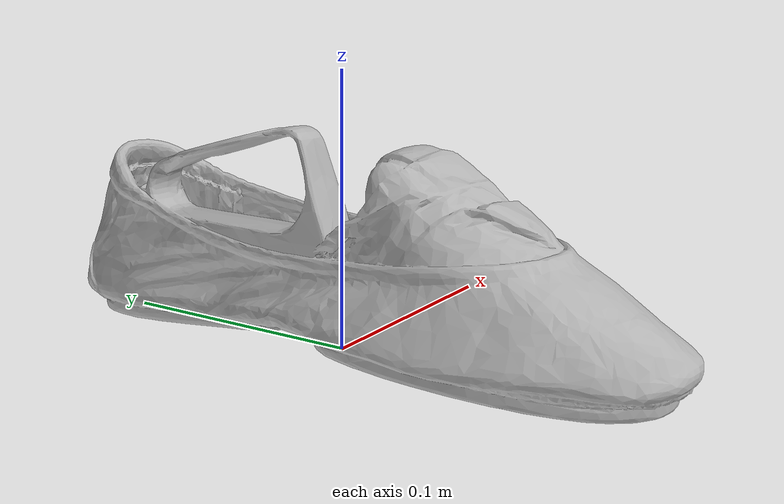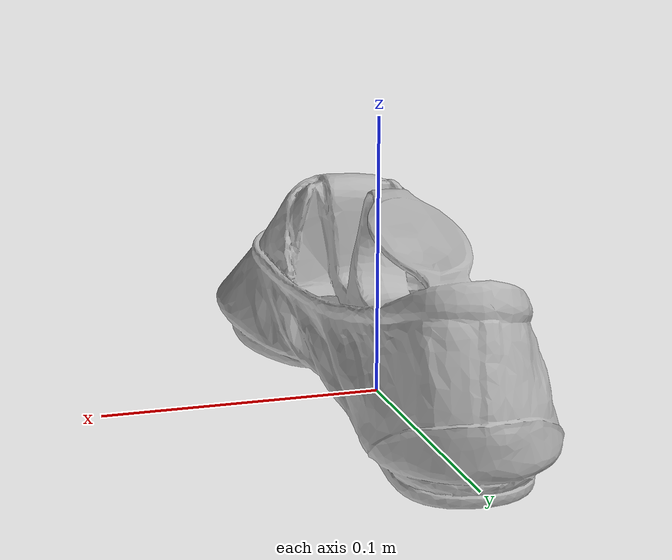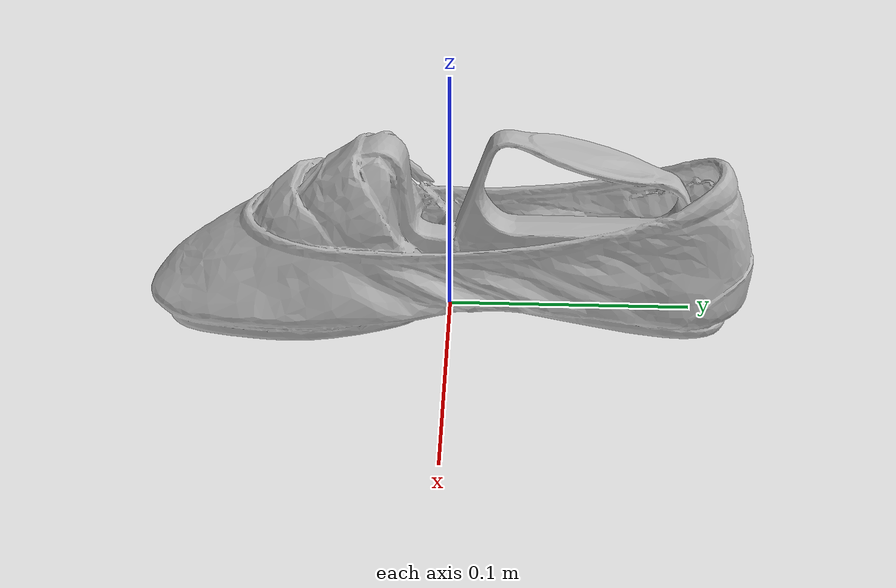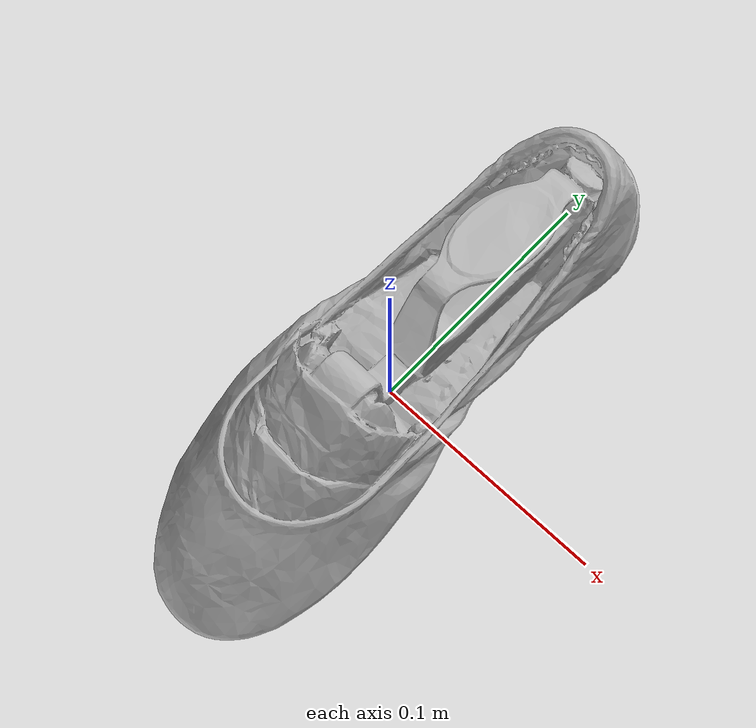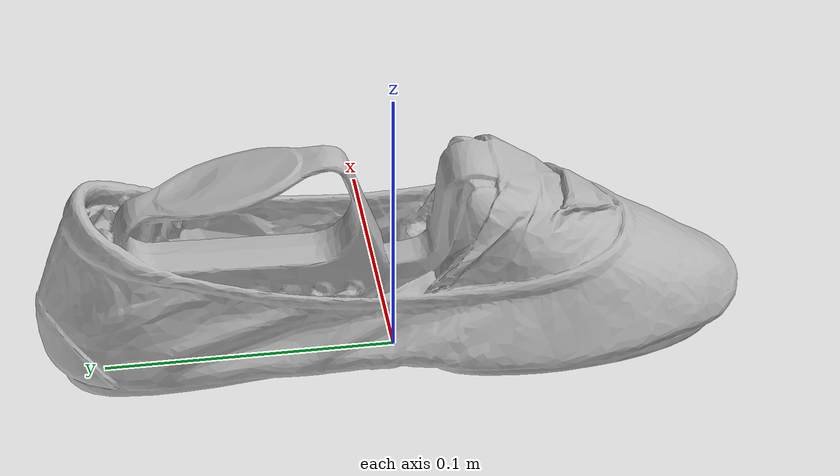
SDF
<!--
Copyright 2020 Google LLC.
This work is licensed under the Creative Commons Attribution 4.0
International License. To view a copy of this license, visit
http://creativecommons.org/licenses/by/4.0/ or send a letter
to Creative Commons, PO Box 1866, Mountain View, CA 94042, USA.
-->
<?xml version="1.0" ?>
<sdf version="1.6">
  <model name="Tieks_Ballet_Flats_Diamond_White_Croc">
    <link name="link_0">
      <visual name="visual">
        <geometry>
          <mesh>
            <uri>meshes/model.obj</uri>
          </mesh>
        </geometry>
      </visual>
      <collision name="collision_0">
        <geometry>
          <mesh>
            <uri>meshes/model.obj</uri>
          </mesh>
        </geometry>
      </collision>
    </link>
  </model>
</sdf>
